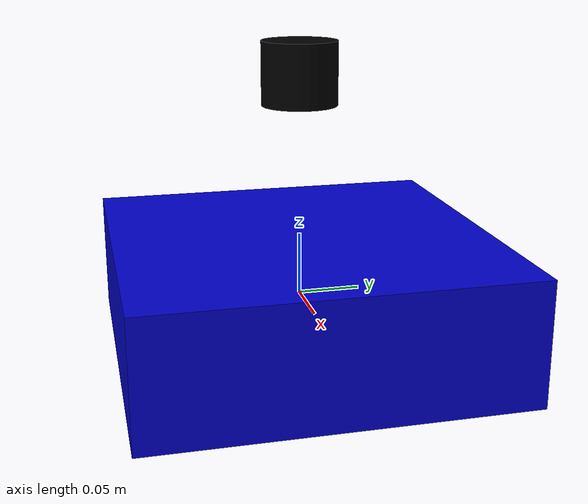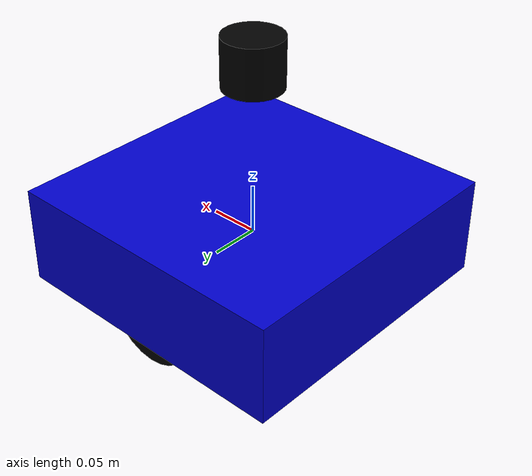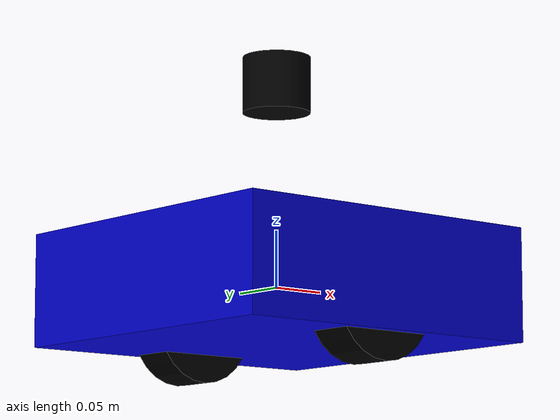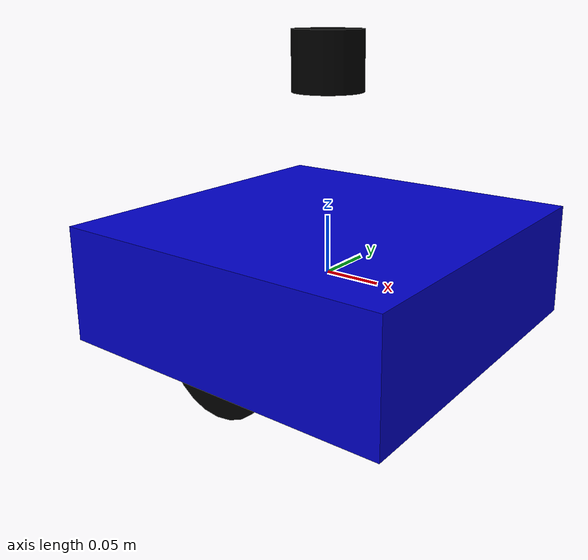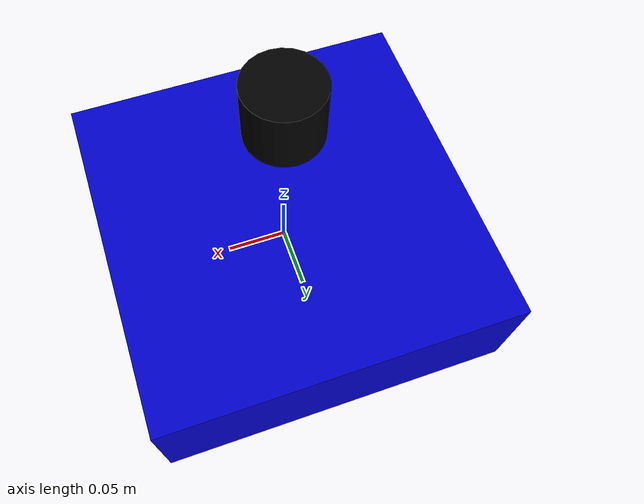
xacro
<?xml version="1.0"?>
<robot name="differential_drive_robot" xmlns:xacro="http://www.ros.org/wiki/xacro">

  <!-- Base Link -->
  <link name="base_link">
    <visual>
      <geometry>
        <box size="0.3 0.3 0.1"/>
      </geometry>
      <material name="blue">
        <color rgba="0 0 0.8 1"/>
      </material>
    </visual>
    <collision>
      <geometry>
        <box size="0.3 0.3 0.1"/>
      </geometry>
    </collision>
    <inertial>
      <mass value="1.0"/>
      <inertia ixx="0.0166" ixy="0" ixz="0" iyy="0.0166" iyz="0" izz="0.0166"/>
    </inertial>
  </link>

  <!-- Left Wheel -->
  <link name="left_wheel">
    <visual>
      <geometry>
        <cylinder radius="0.05" length="0.04"/>
      </geometry>
      <material name="black">
        <color rgba="0 0 0 1"/>
      </material>
    </visual>
    <collision>
      <geometry>
        <cylinder radius="0.05" length="0.04"/>
      </geometry>
    </collision>
    <inertial>
      <mass value="0.1"/>
      <inertia ixx="0.00001" ixy="0" ixz="0" iyy="0.00001" iyz="0" izz="0.00001"/>
    </inertial>
  </link>

  <!-- Right Wheel -->
  <link name="right_wheel">
    <visual>
      <geometry>
        <cylinder radius="0.05" length="0.04"/>
      </geometry>
      <material name="black">
        <color rgba="0 0 0 1"/>
      </material>
    </visual>
    <collision>
      <geometry>
        <cylinder radius="0.05" length="0.04"/>
      </geometry>
    </collision>
    <inertial>
      <mass value="0.1"/>
      <inertia ixx="0.00001" ixy="0" ixz="0" iyy="0.00001" iyz="0" izz="0.00001"/>
    </inertial>
  </link>

  <!-- Left Wheel Joint -->
  <joint name="left_wheel_joint" type="continuous">
    <parent link="base_link"/>
    <child link="left_wheel"/>
    <origin xyz="0 0.12 -0.025" rpy="-1.5707 0 0"/>
    <axis xyz="0 0 1"/>
  </joint>

  <!-- Right Wheel Joint -->
  <joint name="right_wheel_joint" type="continuous">
    <parent link="base_link"/>
    <child link="right_wheel"/>
    <origin xyz="0 -0.12 -0.025" rpy="-1.5707 0 0"/>
    <axis xyz="0 0 1"/>
  </joint>

  <!-- Laser Link -->
  <link name="laser">
    <visual>
      <geometry>
        <cylinder radius="0.03" length="0.05"/>
      </geometry>
      <material name="black"/>
    </visual>
    <collision>
      <geometry>
        <cylinder radius="0.03" length="0.05"/>
      </geometry>
    </collision>
    <inertial>
      <mass value="0.1"/>
      <inertia ixx="0.0001" ixy="0" ixz="0" iyy="0.0001" iyz="0" izz="0.0001"/>
    </inertial>
  </link>

  <!-- Laser Joint -->
  <joint name="laser_joint" type="fixed">
    <parent link="base_link"/>
    <child link="laser"/>
    <origin xyz="0 0 0.18" rpy="0 0 0"/>
  </joint>

  <!-- Gazebo plugins -->
  <gazebo>
    <plugin filename="gz-sim-diff-drive-system"
            name="gz::sim::systems::DiffDrive">
      <left_joint>left_wheel_joint</left_joint>
      <right_joint>right_wheel_joint</right_joint>
      <wheel_separation>0.24</wheel_separation>
      <wheel_radius>0.05</wheel_radius>
      <odom_publish_frequency>10</odom_publish_frequency>
    </plugin>
  </gazebo>

  <!-- Gazebo plugins for laser -->
  <gazebo reference="laser">
    <sensor name='lidar' type='ray'>
      <always_on>1</always_on>
      <update_rate>10</update_rate>
      <ray>
        <scan>
          <horizontal>
            <samples>360</samples>
            <resolution>1</resolution>
            <min_angle>-3.14159</min_angle>
            <max_angle>3.14159</max_angle>
          </horizontal>
        </scan>
        <range>
          <min>0.1</min>
          <max>5.0</max>
          <resolution>0.01</resolution>
        </range>
      </ray>
      <visualize>true</visualize>
      <plugin name='ray' filename='gz-sim-ray-sensor-system'>
        <gz_frame_id>laser</gz_frame_id>
        <topic>/scan</topic>
        <frame_name>laser</frame_name>
      </plugin>
    </sensor>
  </gazebo>

</robot>
